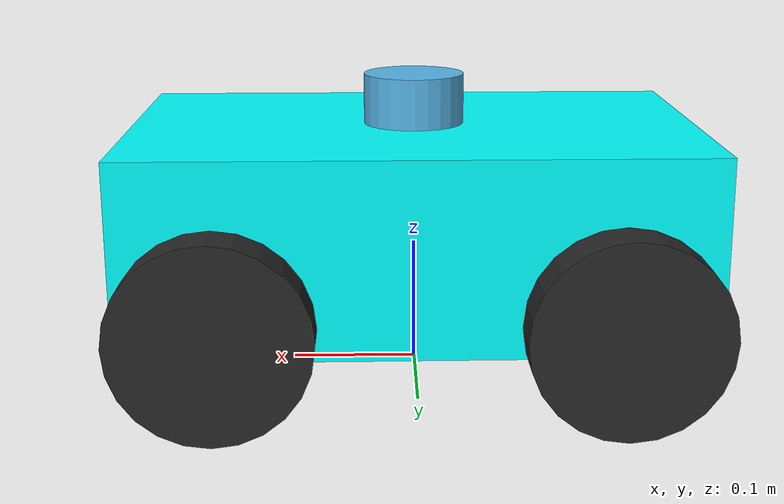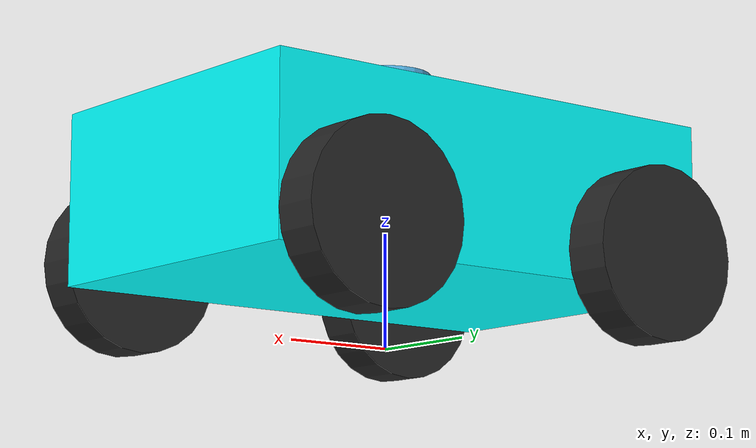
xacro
<?xml version="1.0"?>
<robot name="kd_bot" xmlns:xacro="http://www.ros.org/wiki/xacro">

  <!-- Define robot constants -->
  <xacro:property name="base_width" value="0.30"/>
  <xacro:property name="base_length" value="0.45"/>
  <xacro:property name="base_height" value="0.15"/>
  <xacro:property name="ground_clearance" value="0.05"/>
  <xacro:property name="base_mass" value="8.0"/>
  <xacro:property name="base_link_height" value="${ground_clearance + base_height / 2.0}"/>
  <xacro:property name="wheel_radius" value="0.075"/>
  <xacro:property name="wheel_width" value="0.04"/>
  <xacro:property name="wheel_mass" value="0.5"/>
  <xacro:property name="lidar_radius" value="0.04"/>
  <xacro:property name="lidar_height" value="0.04"/>
  <xacro:property name="lidar_mass" value="0.15"/>

  <xacro:property
  name="base_ixx"
  value="${base_mass / 12.0 * (base_width * base_width + base_height * base_height)}"/>

  <xacro:property
  name="base_iyy"
  value="${base_mass / 12.0 * (base_length * base_length + base_height * base_height)}"/>

  <xacro:property
  name="base_izz"
  value="${base_mass / 12.0 * (base_length * base_length + base_width * base_width)}"/>

  <xacro:property
  name="wheel_iyy"
  value="${wheel_mass / 2.0 * (wheel_radius * wheel_radius)}"/>

  <xacro:property
  name="wheel_ixx"
  value="${wheel_mass / 12.0 * (3.0*(wheel_radius * wheel_radius) + (wheel_width * wheel_width))}"/>

  <xacro:property
  name="wheel_izz"
  value="${wheel_mass / 12.0 * (3.0*(wheel_radius * wheel_radius) + (wheel_width * wheel_width))}"/>

  <xacro:property
    name="lidar_ixx"
    value="${lidar_mass / 12.0 * (3.0 * lidar_radius * lidar_radius + lidar_height * lidar_height)}"/>

  <xacro:property
    name="lidar_iyy"
    value="${lidar_ixx}"/>

  <xacro:property
    name="lidar_izz"
    value="${lidar_mass / 2.0 * lidar_radius * lidar_radius}"/>

  <!-- Robot Base -->
  <link name="base_link">
    <visual>
      <geometry>
        <box size="${base_length} ${base_width} ${base_height}"/>
      </geometry>
      <material name="Cyan">
        <color rgba="0 1.0 1.0 1.0"/>
      </material>
    </visual>
    <collision>
        <geometry>
            <box size="${base_length} ${base_width} ${base_height}"/>
        </geometry>
    </collision>
    <inertial>
        <origin xyz="0 0 0" rpy="0 0 0"/>
        <mass value="${base_mass}"/>
        <inertia
            ixx="${base_ixx}"
            ixy="0.0"
            ixz="0.0"
            iyy="${base_iyy}"
            iyz="0.0"
            izz="${base_izz}"/>
    </inertial>
  </link>
    <link name="lidar_link">
        <visual>
         <geometry>
            <cylinder radius="${lidar_radius}" length="${lidar_height}"/>
         </geometry>
        </visual>
        <collision>
            <geometry>
                <cylinder radius="${lidar_radius}" length="${lidar_height}"/>
            </geometry>
        </collision>
        <inertial>
            <origin xyz="0 0 0" rpy="0 0 0"/>
            <mass value="${lidar_mass}"/>
            <inertia
                ixx="${lidar_ixx}"
                ixy="0.0"
                ixz="0.0"
                iyy="${lidar_iyy}"
                iyz="0.0"
                izz="${lidar_izz}"/>
        </inertial>
    </link>

    <joint name="lidar_joint" type="fixed">
        <parent link="base_link"/>
        <child link="lidar_link"/>
        <origin xyz="0 0 ${base_height / 2.0 + lidar_height / 2.0}" rpy="0 0 0"/>
    </joint>

    <!-- IMU sensor link, fixed to base_link -->
    <link name="imu_link">
        <visual>
            <geometry>
                <box size="0.02 0.02 0.02"/>
            </geometry>
            <material name="Orange">
                <color rgba="1.0 0.5 0.0 1.0"/>
            </material>
        </visual>
        <collision>
            <geometry>
                <box size="0.02 0.02 0.02"/>
            </geometry>
        </collision>
        <inertial>
            <origin xyz="0 0 0" rpy="0 0 0"/>
            <mass value="0.01"/>
            <inertia
                ixx="0.000001"
                ixy="0.0"
                ixz="0.0"
                iyy="0.000001"
                iyz="0.0"
                izz="0.000001"/>
        </inertial>
    </link>

    <joint name="imu_joint" type="fixed">
        <parent link="base_link"/>
        <child link="imu_link"/>
        <origin xyz="0 0 ${base_height / 2.0 + 0.02}" rpy="0 0 0"/>
    </joint>

    <link name="camera_link">
        <inertial>
            <mass value="0.01"/>
            <inertia ixx="0.000001" ixy="0" ixz="0" iyy="0.000001" iyz="0" izz="0.000001"/>
        </inertial>
    </link>
    <joint name="camera_joint" type="fixed">
        <parent link="base_link"/>
        <child link="camera_link"/>
        <origin xyz="${base_length / 2.0} 0 0.08" rpy="0 0 0"/>
    </joint>
    <link name="camera_optical_frame"/>
    <joint name="camera_optical_joint" type="fixed">
        <parent link="camera_link"/>
        <child link="camera_optical_frame"/>
        <origin xyz="0 0 0" rpy="-1.57079632679 0 -1.57079632679"/>
    </joint>

    <gazebo reference="camera_link">
        <sensor name="front_camera" type="camera">
            <topic>/camera</topic>
            <gz_frame_id>camera_optical_frame</gz_frame_id>
            <update_rate>10</update_rate>
            <always_on>true</always_on>
            <camera>
                <horizontal_fov>1.5708</horizontal_fov>
                <image><width>320</width><height>240</height><format>R8G8B8</format></image>
                <clip><near>0.05</near><far>20.0</far></clip>
            </camera>
        </sensor>
    </gazebo>

  <gazebo reference="lidar_link">
    <sensor name="lidar" type="gpu_lidar">
        <topic>/scan</topic>
        <gz_frame_id>lidar_link</gz_frame_id>
        <update_rate>10</update_rate>
        <always_on>true</always_on>
        <visualize>true</visualize>

        <ray>
            <scan>
                <horizontal>
                    <samples>1080</samples>
                    <resolution>1</resolution>
                    <min_angle>-3.14159</min_angle>
                    <max_angle>3.14159</max_angle>
                </horizontal>
            </scan>

            <range>
                <min>0.08</min>
                <max>10.0</max>
                <resolution>0.01</resolution>
            </range>
        </ray>
    </sensor>
</gazebo>

  <!-- Gazebo IMU sensor attached to imu_link; publishes /imu/data_raw -->
  <gazebo reference="imu_link">
    <sensor name="imu" type="imu">
        <topic>/imu/data_raw</topic>
        <gz_frame_id>imu_link</gz_frame_id>
        <update_rate>100</update_rate>
        <always_on>true</always_on>
        <imu>
            <angular_velocity>
                <x>
                    <noise type="gaussian">
                        <mean>0.0</mean>
                        <stddev>0.0005</stddev>
                    </noise>
                </x>
                <y>
                    <noise type="gaussian">
                        <mean>0.0</mean>
                        <stddev>0.0005</stddev>
                    </noise>
                </y>
                <z>
                    <noise type="gaussian">
                        <mean>0.0</mean>
                        <stddev>0.0008</stddev>
                    </noise>
                </z>
            </angular_velocity>
            <linear_acceleration>
                <x>
                    <noise type="gaussian">
                        <mean>0.0</mean>
                        <stddev>0.01</stddev>
                    </noise>
                </x>
                <y>
                    <noise type="gaussian">
                        <mean>0.0</mean>
                        <stddev>0.01</stddev>
                    </noise>
                </y>
                <z>
                    <noise type="gaussian">
                        <mean>0.0</mean>
                        <stddev>0.02</stddev>
                    </noise>
                </z>
            </linear_acceleration>
        </imu>
    </sensor>
</gazebo>

  <!-- Robot Footprint -->
  <link name="base_footprint"/>

  <joint name="base_joint" type="fixed">
    <parent link="base_footprint"/>
    <child link="base_link"/>
    <origin xyz="0.0 0.0 ${base_link_height}" rpy="0 0 0"/>
  </joint>

  <xacro:macro name="wheel" params="name x y">
     <link name="${name}_wheel_link">
        <visual>
            <origin xyz="0 0 0" rpy="1.5708 0 0"/>
            <geometry>
                <cylinder radius="${wheel_radius}" length="${wheel_width}"/>
            </geometry>
            <material name="dark gray">
                <color rgba="0.15 0.15 0.15 1.0"/>
            </material>
        </visual>

        <collision>
            <origin xyz="0 0 0" rpy="1.5708 0 0"/>
            <geometry>
                <cylinder radius="${wheel_radius}" length="${wheel_width}"/>
            </geometry>
        </collision>
        <inertial>
            <origin xyz="0 0 0" rpy="0 0 0"/>
            <mass value="${wheel_mass}"/>
            <inertia
                ixx="${wheel_ixx}"
                ixy="0.0"
                ixz="0.0"
                iyy="${wheel_iyy}"
                iyz="0.0"
                izz="${wheel_izz}"/>
        </inertial>
     </link>

    <joint name="${name}_wheel_joint" type="continuous">
        <parent link="base_link"/>
        <child link="${name}_wheel_link"/>
        <origin xyz="${x} ${y} -0.05" rpy="0 0 0"/>
        <axis xyz="0 1 0"/>
    </joint>
  </xacro:macro>
  <xacro:wheel name="front_left" x="0.15" y="0.17"/>
  <xacro:wheel name="front_right" x="0.15" y="-0.17"/>
  <xacro:wheel name="rear_right" x="-0.15" y="-0.17"/>
  <xacro:wheel name="rear_left" x="-0.15" y="0.17"/>

    <gazebo>
    <plugin
        filename="gz-sim-diff-drive-system"
        name="gz::sim::systems::DiffDrive">

        <left_joint>front_left_wheel_joint</left_joint>
        <left_joint>rear_left_wheel_joint</left_joint>

        <right_joint>front_right_wheel_joint</right_joint>
        <right_joint>rear_right_wheel_joint</right_joint>

        <wheel_separation>0.82</wheel_separation>
        <wheel_radius>${wheel_radius}</wheel_radius>

        <topic>/cmd_vel</topic>
        <frame_id>odom</frame_id>
        <child_frame_id>base_footprint</child_frame_id>
    </plugin>
    <plugin
        filename="gz-sim-joint-state-publisher-system"
        name="gz::sim::systems::JointStatePublisher">
        <joint_name>front_left_wheel_joint</joint_name>
        <joint_name>front_right_wheel_joint</joint_name>
        <joint_name>rear_right_wheel_joint</joint_name>
        <joint_name>rear_left_wheel_joint</joint_name>
    </plugin>
    <plugin
        filename="gz-sim-odometry-publisher-system"
        name="gz::sim::systems::OdometryPublisher">

        <odom_frame>world</odom_frame>
        <robot_base_frame>base_footprint</robot_base_frame>
        <odom_publish_frequency>50</odom_publish_frequency>
        <odom_topic>/ground_truth/odometry</odom_topic>
        <tf_topic>/ground_truth/tf</tf_topic>
        <dimensions>2</dimensions>
    </plugin>
    </gazebo>

</robot>
